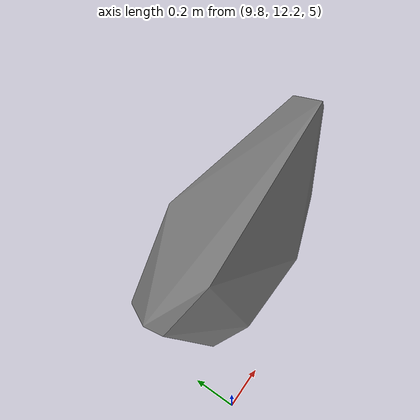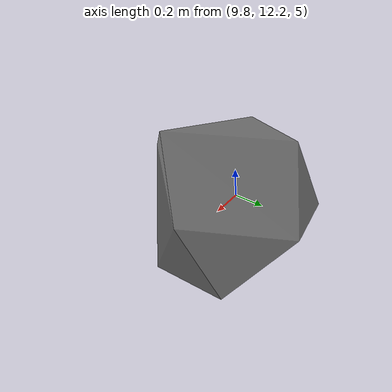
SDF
<sdf version="1.8">
 <model name="blue_mountains">
  <static>true</static>
  <link name="forest_21_21">
   <collision name="tree_19_trunk">
    <pose>10.28981 12.19777 2.418092 0 0 -1.871646</pose>
    <geometry><cylinder><radius>0.04445094</radius><length>2.816246</length></cylinder></geometry>
   </collision>
   <collision name="plant_19_crown_0">
    <pose>10.29508 12.21475 1.009969 0 0 -1.871646</pose>
    <geometry>
     <mesh>
      <uri>model://blue_mountains/meshes/canopy_1_0.dae</uri>
      <scale>0.1778038 0.1778038 0.2080102</scale>
     </mesh>
    </geometry>
   </collision>
   <collision name="plant_19_crown_1">
    <pose>10.29508 12.21475 1.009969 0 0 -1.871646</pose>
    <geometry>
     <mesh>
      <uri>model://blue_mountains/meshes/canopy_1_1.dae</uri>
      <scale>0.1778038 0.1778038 0.2080102</scale>
     </mesh>
    </geometry>
   </collision>
   <collision name="tree_56_trunk">
    <pose>13.7802 11.71148 1.761126 0 0 -0.8789189</pose>
    <geometry><cylinder><radius>0.03630787</radius><length>1.683934</length></cylinder></geometry>
   </collision>
   <collision name="plant_56_crown_0">
    <pose>13.77093 11.72266 0.9191594 0 0 -0.8789189</pose>
    <geometry>
     <mesh>
      <uri>model://blue_mountains/meshes/canopy_8_0.dae</uri>
      <scale>0.1452315 0.1452315 0.1252998</scale>
     </mesh>
    </geometry>
   </collision>
   <collision name="plant_56_crown_1">
    <pose>13.77093 11.72266 0.9191594 0 0 -0.8789189</pose>
    <geometry>
     <mesh>
      <uri>model://blue_mountains/meshes/canopy_8_1.dae</uri>
      <scale>0.1452315 0.1452315 0.1252998</scale>
     </mesh>
    </geometry>
   </collision>
   <collision name="tree_94_trunk">
    <pose>13.75632 11.7599 2.046897 0 0 2.3019</pose>
    <geometry><cylinder><radius>0.03556422</radius><length>2.237846</length></cylinder></geometry>
   </collision>
   <collision name="plant_94_crown_0">
    <pose>13.76582 11.74931 0.9279737 0 0 2.3019</pose>
    <geometry>
     <mesh>
      <uri>model://blue_mountains/meshes/canopy_6_0.dae</uri>
      <scale>0.1422569 0.1422569 0.1649565</scale>
     </mesh>
    </geometry>
   </collision>
   <collision name="plant_94_crown_1">
    <pose>13.76582 11.74931 0.9279737 0 0 2.3019</pose>
    <geometry>
     <mesh>
      <uri>model://blue_mountains/meshes/canopy_6_1.dae</uri>
      <scale>0.1422569 0.1422569 0.1649565</scale>
     </mesh>
    </geometry>
   </collision>
   <collision name="tree_125_trunk">
    <pose>12.8357 11.20155 2.829228 0 0 -2.539277</pose>
    <geometry><cylinder><radius>0.07243883</radius><length>4.114428</length></cylinder></geometry>
   </collision>
   <collision name="plant_125_crown_0">
    <pose>12.85958 11.21797 0.7720137 0 0 -2.539277</pose>
    <geometry>
     <mesh>
      <uri>model://blue_mountains/meshes/canopy_5_0.dae</uri>
      <scale>0.2897553 0.2897553 0.3092592</scale>
     </mesh>
    </geometry>
   </collision>
   <collision name="plant_125_crown_1">
    <pose>12.85958 11.21797 0.7720137 0 0 -2.539277</pose>
    <geometry>
     <mesh>
      <uri>model://blue_mountains/meshes/canopy_5_1.dae</uri>
      <scale>0.2897553 0.2897553 0.3092592</scale>
     </mesh>
    </geometry>
   </collision>
   <collision name="tree_151_trunk">
    <pose>18.66594 15.20976 4.093765 0 0 -0.9193587</pose>
    <geometry><cylinder><radius>0.06435182</radius><length>3.824567</length></cylinder></geometry>
   </collision>
   <collision name="plant_151_crown_0">
    <pose>18.65033 15.23023 2.181481 0 0 -0.9193587</pose>
    <geometry>
     <mesh>
      <uri>model://blue_mountains/meshes/canopy_5_0.dae</uri>
      <scale>0.2574073 0.2574073 0.2874719</scale>
     </mesh>
    </geometry>
   </collision>
   <collision name="plant_151_crown_1">
    <pose>18.65033 15.23023 2.181481 0 0 -0.9193587</pose>
    <geometry>
     <mesh>
      <uri>model://blue_mountains/meshes/canopy_5_1.dae</uri>
      <scale>0.2574073 0.2574073 0.2874719</scale>
     </mesh>
    </geometry>
   </collision>
   <collision name="tree_159_trunk">
    <pose>19.14671 13.21057 2.517794 0 0 -0.01246482</pose>
    <geometry><cylinder><radius>0.04049743</radius><length>2.493312</length></cylinder></geometry>
   </collision>
   <collision name="plant_159_crown_0">
    <pose>19.13051 13.21077 1.271138 0 0 -0.01246482</pose>
    <geometry>
     <mesh>
      <uri>model://blue_mountains/meshes/canopy_2_0.dae</uri>
      <scale>0.1619897 0.1619897 0.1834463</scale>
     </mesh>
    </geometry>
   </collision>
   <collision name="plant_159_crown_1">
    <pose>19.13051 13.21077 1.271138 0 0 -0.01246482</pose>
    <geometry>
     <mesh>
      <uri>model://blue_mountains/meshes/canopy_2_1.dae</uri>
      <scale>0.1619897 0.1619897 0.1834463</scale>
     </mesh>
    </geometry>
   </collision>
   <collision name="tree_171_trunk">
    <pose>11.93673 11.48507 2.129674 0 0 -0.4038813</pose>
    <geometry><cylinder><radius>0.050785</radius><length>2.574268</length></cylinder></geometry>
   </collision>
   <collision name="plant_171_crown_0">
    <pose>11.91805 11.49306 0.8425403 0 0 -0.4038813</pose>
    <geometry>
     <mesh><uri>model://blue_mountains/meshes/canopy_6_0.dae</uri><scale>0.20314 0.20314 0.1897549</scale></mesh>
    </geometry>
   </collision>
   <collision name="plant_171_crown_1">
    <pose>11.91805 11.49306 0.8425403 0 0 -0.4038813</pose>
    <geometry>
     <mesh><uri>model://blue_mountains/meshes/canopy_6_1.dae</uri><scale>0.20314 0.20314 0.1897549</scale></mesh>
    </geometry>
   </collision>
   <collision name="tree_176_trunk">
    <pose>13.93822 12.82686 2.765849 0 0 -1.141212</pose>
    <geometry><cylinder><radius>0.05838812</radius><length>2.939945</length></cylinder></geometry>
   </collision>
   <collision name="plant_176_crown_0">
    <pose>13.92849 12.84809 1.295877 0 0 -1.141212</pose>
    <geometry>
     <mesh>
      <uri>model://blue_mountains/meshes/canopy_8_0.dae</uri>
      <scale>0.2335525 0.2335525 0.2187583</scale>
     </mesh>
    </geometry>
   </collision>
   <collision name="plant_176_crown_1">
    <pose>13.92849 12.84809 1.295877 0 0 -1.141212</pose>
    <geometry>
     <mesh>
      <uri>model://blue_mountains/meshes/canopy_8_1.dae</uri>
      <scale>0.2335525 0.2335525 0.2187583</scale>
     </mesh>
    </geometry>
   </collision>
   <collision name="tree_192_trunk">
    <pose>14.37037 15.0912 3.99507 0 0 -3.074402</pose>
    <geometry><cylinder><radius>0.0706226</radius><length>3.489123</length></cylinder></geometry>
   </collision>
   <collision name="plant_192_crown_0">
    <pose>14.39855 15.0931 2.250509 0 0 -3.074402</pose>
    <geometry>
     <mesh>
      <uri>model://blue_mountains/meshes/canopy_8_0.dae</uri>
      <scale>0.2824904 0.2824904 0.259622</scale>
     </mesh>
    </geometry>
   </collision>
   <collision name="plant_192_crown_1">
    <pose>14.39855 15.0931 2.250509 0 0 -3.074402</pose>
    <geometry>
     <mesh>
      <uri>model://blue_mountains/meshes/canopy_8_1.dae</uri>
      <scale>0.2824904 0.2824904 0.259622</scale>
     </mesh>
    </geometry>
   </collision>
   <collision name="tree_198_trunk">
    <pose>14.30513 14.67194 3.357372 0 0 -2.872013</pose>
    <geometry><cylinder><radius>0.04754295</radius><length>2.602437</length></cylinder></geometry>
   </collision>
   <collision name="plant_198_crown_0">
    <pose>14.32346 14.677 2.056154 0 0 -2.872013</pose>
    <geometry>
     <mesh>
      <uri>model://blue_mountains/meshes/canopy_3_0.dae</uri>
      <scale>0.1901718 0.1901718 0.1934791</scale>
     </mesh>
    </geometry>
   </collision>
   <collision name="plant_198_crown_1">
    <pose>14.32346 14.677 2.056154 0 0 -2.872013</pose>
    <geometry>
     <mesh>
      <uri>model://blue_mountains/meshes/canopy_3_1.dae</uri>
      <scale>0.1901718 0.1901718 0.1934791</scale>
     </mesh>
    </geometry>
   </collision>
   <collision name="tree_228_trunk">
    <pose>17.14733 14.36216 3.71788 0 0 -2.312563</pose>
    <geometry><cylinder><radius>0.06353469</radius><length>3.748604</length></cylinder></geometry>
   </collision>
   <collision name="plant_228_crown_0">
    <pose>17.1645 14.3809 1.843578 0 0 -2.312563</pose>
    <geometry>
     <mesh>
      <uri>model://blue_mountains/meshes/canopy_6_0.dae</uri>
      <scale>0.2541387 0.2541387 0.2763177</scale>
     </mesh>
    </geometry>
   </collision>
   <collision name="plant_228_crown_1">
    <pose>17.1645 14.3809 1.843578 0 0 -2.312563</pose>
    <geometry>
     <mesh>
      <uri>model://blue_mountains/meshes/canopy_6_1.dae</uri>
      <scale>0.2541387 0.2541387 0.2763177</scale>
     </mesh>
    </geometry>
   </collision>
   <collision name="tree_238_trunk">
    <pose>12.79672 14.64816 3.799947 0 0 0.5991009</pose>
    <geometry><cylinder><radius>0.06629574</radius><length>3.548445</length></cylinder></geometry>
   </collision>
   <collision name="plant_238_crown_0">
    <pose>12.77482 14.6332 2.025724 0 0 0.5991009</pose>
    <geometry>
     <mesh><uri>model://blue_mountains/meshes/canopy_1_0.dae</uri><scale>0.265183 0.265183 0.2620911</scale></mesh>
    </geometry>
   </collision>
   <collision name="plant_238_crown_1">
    <pose>12.77482 14.6332 2.025724 0 0 0.5991009</pose>
    <geometry>
     <mesh><uri>model://blue_mountains/meshes/canopy_1_1.dae</uri><scale>0.265183 0.265183 0.2620911</scale></mesh>
    </geometry>
   </collision>
   <collision name="tree_405_trunk">
    <pose>13.643 10.51883 1.739451 0 0 1.875933</pose>
    <geometry><cylinder><radius>0.03907708</radius><length>2.327242</length></cylinder></geometry>
   </collision>
   <collision name="plant_405_crown_0">
    <pose>13.6477 10.50392 0.5758295 0 0 1.875933</pose>
    <geometry>
     <mesh>
      <uri>model://blue_mountains/meshes/canopy_0_0.dae</uri>
      <scale>0.1563083 0.1563083 0.1716328</scale>
     </mesh>
    </geometry>
   </collision>
   <collision name="plant_405_crown_1">
    <pose>13.6477 10.50392 0.5758295 0 0 1.875933</pose>
    <geometry>
     <mesh>
      <uri>model://blue_mountains/meshes/canopy_0_1.dae</uri>
      <scale>0.1563083 0.1563083 0.1716328</scale>
     </mesh>
    </geometry>
   </collision>
   <collision name="tree_427_trunk">
    <pose>12.11699 14.5405 4.078952 0 0 2.685059</pose>
    <geometry><cylinder><radius>0.070357</radius><length>4.239164</length></cylinder></geometry>
   </collision>
   <collision name="plant_427_crown_0">
    <pose>12.14225 14.5281 1.95937 0 0 2.685059</pose>
    <geometry>
     <mesh><uri>model://blue_mountains/meshes/canopy_3_0.dae</uri><scale>0.281428 0.281428 0.3151621</scale></mesh>
    </geometry>
   </collision>
   <collision name="plant_427_crown_1">
    <pose>12.14225 14.5281 1.95937 0 0 2.685059</pose>
    <geometry>
     <mesh><uri>model://blue_mountains/meshes/canopy_3_1.dae</uri><scale>0.281428 0.281428 0.3151621</scale></mesh>
    </geometry>
   </collision>
   <collision name="tree_452_trunk">
    <pose>15.46093 12.16989 2.797419 0 0 1.900864</pose>
    <geometry><cylinder><radius>0.06186363</radius><length>3.561001</length></cylinder></geometry>
   </collision>
   <collision name="plant_452_crown_0">
    <pose>15.46895 12.14648 1.016919 0 0 1.900864</pose>
    <geometry>
     <mesh>
      <uri>model://blue_mountains/meshes/canopy_0_0.dae</uri>
      <scale>0.2474545 0.2474545 0.2626218</scale>
     </mesh>
    </geometry>
   </collision>
   <collision name="plant_452_crown_1">
    <pose>15.46895 12.14648 1.016919 0 0 1.900864</pose>
    <geometry>
     <mesh>
      <uri>model://blue_mountains/meshes/canopy_0_1.dae</uri>
      <scale>0.2474545 0.2474545 0.2626218</scale>
     </mesh>
    </geometry>
   </collision>
   <collision name="plant_470_crown_0">
    <pose>12.85684 19.42427 4.861385 0 0 0</pose>
    <geometry>
     <mesh>
      <uri>model://blue_mountains/meshes/canopy_9_0.dae</uri>
      <scale>0.07575656 0.07575656 0.06926315</scale>
     </mesh>
    </geometry>
   </collision>
   <collision name="plant_470_crown_1">
    <pose>12.85684 19.42427 4.861385 0 0 0</pose>
    <geometry>
     <mesh>
      <uri>model://blue_mountains/meshes/canopy_9_1.dae</uri>
      <scale>0.07575656 0.07575656 0.06926315</scale>
     </mesh>
    </geometry>
   </collision>
   <collision name="plant_489_crown_0">
    <pose>16.45982 19.25925 4.783933 0 0 0</pose>
    <geometry>
     <mesh>
      <uri>model://blue_mountains/meshes/canopy_14_0.dae</uri>
      <scale>0.07575656 0.07575656 0.06926315</scale>
     </mesh>
    </geometry>
   </collision>
   <collision name="plant_489_crown_1">
    <pose>16.45982 19.25925 4.783933 0 0 0</pose>
    <geometry>
     <mesh>
      <uri>model://blue_mountains/meshes/canopy_14_1.dae</uri>
      <scale>0.07575656 0.07575656 0.06926315</scale>
     </mesh>
    </geometry>
   </collision>
   <collision name="plant_491_crown_0">
    <pose>12.08193 19.93009 5.054983 0 0 0</pose>
    <geometry>
     <mesh>
      <uri>model://blue_mountains/meshes/canopy_17_0.dae</uri>
      <scale>0.07575656 0.07575656 0.06926315</scale>
     </mesh>
    </geometry>
   </collision>
   <collision name="plant_491_crown_1">
    <pose>12.08193 19.93009 5.054983 0 0 0</pose>
    <geometry>
     <mesh>
      <uri>model://blue_mountains/meshes/canopy_17_1.dae</uri>
      <scale>0.07575656 0.07575656 0.06926315</scale>
     </mesh>
    </geometry>
   </collision>
   <collision name="plant_513_crown_0">
    <pose>17.25953 19.2572 4.756684 0 0 0</pose>
    <geometry>
     <mesh>
      <uri>model://blue_mountains/meshes/canopy_12_0.dae</uri>
      <scale>0.07575656 0.07575656 0.06926315</scale>
     </mesh>
    </geometry>
   </collision>
   <collision name="plant_513_crown_1">
    <pose>17.25953 19.2572 4.756684 0 0 0</pose>
    <geometry>
     <mesh>
      <uri>model://blue_mountains/meshes/canopy_12_1.dae</uri>
      <scale>0.07575656 0.07575656 0.06926315</scale>
     </mesh>
    </geometry>
   </collision>
   <collision name="plant_523_crown_0">
    <pose>14.12841 19.71853 5.027014 0 0 0</pose>
    <geometry>
     <mesh>
      <uri>model://blue_mountains/meshes/canopy_9_0.dae</uri>
      <scale>0.07575656 0.07575656 0.06926315</scale>
     </mesh>
    </geometry>
   </collision>
   <collision name="plant_523_crown_1">
    <pose>14.12841 19.71853 5.027014 0 0 0</pose>
    <geometry>
     <mesh>
      <uri>model://blue_mountains/meshes/canopy_9_1.dae</uri>
      <scale>0.07575656 0.07575656 0.06926315</scale>
     </mesh>
    </geometry>
   </collision>
   <visual name="forest_visual">
    <geometry><mesh><uri>model://blue_mountains/meshes/forest_21_21.dae</uri></mesh></geometry>
    <cast_shadows>false</cast_shadows>
   </visual>
  </link>
 </model>
</sdf>
